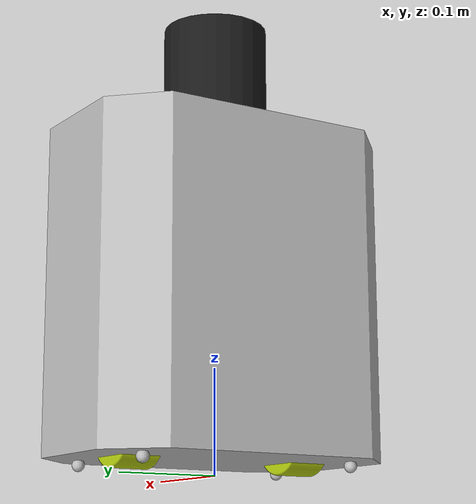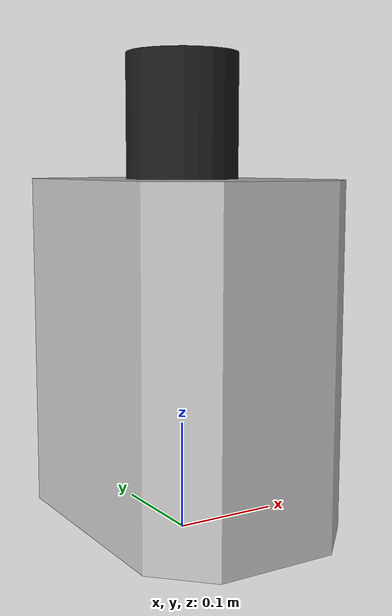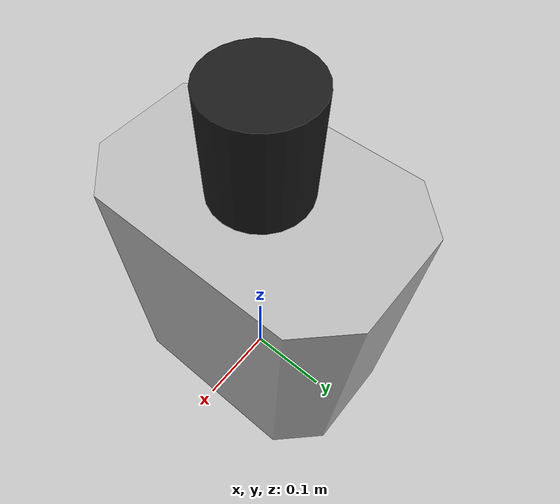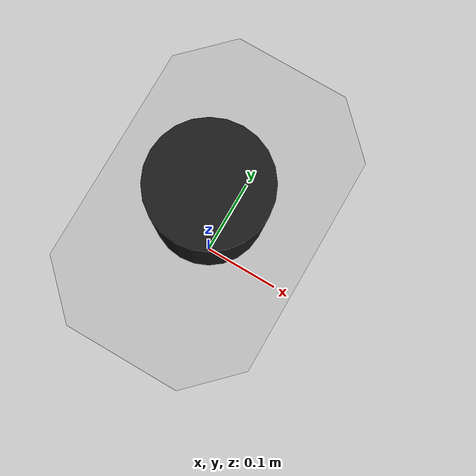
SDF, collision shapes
<?xml version='1.0'?>
<sdf version='1.7'>
    <!-- Some values are totally unrealistic. This allows to have a stable robot -->
    <model name='herminebot'>
        <static>false</static>

        <!-- ****************** ROBOT BASE FOOTPRINT ***************************  -->
        <pose>0.0 0.0 0.0 0.0 0.0 0.0</pose>
        <link name="base_footprint"/>

        <!-- ********************** ROBOT BASE *********************************  -->
        <link name="base_link">
            <inertial>
                <pose>0 0 0 0 0 0</pose>
                <mass>5.0</mass>
            </inertial>

            <visual name="base_visual">
                <pose>0 0 0 0 0 0</pose>
                <geometry>
                    <mesh>
                        <uri>model://herminebot/meshes/base_visual.dae</uri>
                        <scale>1.0 1.0 1.0</scale>
                    </mesh>
                </geometry>
            </visual>

            <collision name="base_collision">
                <pose>0 0 0.014 0 0 0</pose>
                <geometry>
                    <mesh>
                        <uri>model://herminebot/meshes/base_collision.stl</uri>
                        <scale>1.0 1.0 1.0</scale>
                    </mesh>
                </geometry>
            </collision>
        </link>

        <!-- ********************** IMU *********************************  -->
        <link name="imu_link">
            <pose>0 0 0.02 0 0 0</pose>
            <gravity>true</gravity>
            <visual name="imu_visual">
                <geometry>
                    <box>
                        <size>0.019 0.027 0.003</size>
                    </box>
                </geometry>
                <material>
                    <ambient>0.0 0.0 1.0 1.0</ambient>
                    <diffuse>0.3 0.3 0.3 1.0</diffuse>
                    <specular>0.0 0.0 0.0 1.0</specular>
                    <emissive>0.0 0.0 0.0 1.0</emissive>
                </material>
            </visual>

            <collision name="imu_collision">
                <geometry>
                    <box>
                        <size>0.019 0.027 0.003</size>
                    </box>
                </geometry>
            </collision>

            <sensor name="hrc_imu" type="imu">
                <always_on>true</always_on>
                <update_rate>100</update_rate>
                <visualize>true</visualize>
                <imu>
                    <orientation>
                        <x>
                            <noise type="gaussian">
                                <mean>0.0</mean>
                                <stddev>2e-3</stddev>
                            </noise>
                        </x>
                        <y>
                            <noise type="gaussian">
                                <mean>0.0</mean>
                                <stddev>2e-3</stddev>
                            </noise>
                        </y>
                        <z>
                            <noise type="gaussian">
                                <mean>0.0</mean>
                                <stddev>2e-3</stddev>
                            </noise>
                        </z>
                    </orientation>
                    <angular_velocity>
                        <x>
                            <noise type="gaussian">
                                <mean>0.0</mean>
                                <stddev>2e-4</stddev>
                            </noise>
                        </x>
                        <y>
                            <noise type="gaussian">
                                <mean>0.0</mean>
                                <stddev>2e-4</stddev>
                            </noise>
                        </y>
                        <z>
                            <noise type="gaussian">
                                <mean>0.0</mean>
                                <stddev>2e-4</stddev>
                            </noise>
                        </z>
                    </angular_velocity>
                    <linear_acceleration>
                        <x>
                            <noise type="gaussian">
                                <mean>0.0</mean>
                                <stddev>1.7e-2</stddev>
                            </noise>
                        </x>
                        <y>
                            <noise type="gaussian">
                                <mean>0.0</mean>
                                <stddev>1.7e-2</stddev>
                            </noise>
                        </y>
                        <z>
                            <noise type="gaussian">
                                <mean>0.0</mean>
                                <stddev>1.7e-2</stddev>
                            </noise>
                        </z>
                    </linear_acceleration>
                </imu>
                <plugin name="herminebot_imu" filename="libgazebo_ros_imu_sensor.so">
                    <initial_orientation_as_reference>false</initial_orientation_as_reference>
                    <frame_name>imu_link</frame_name>
                    <ros>
                        <namespace>/imu</namespace>
                        <remapping>~/out:=data</remapping>
                    </ros>
                </plugin>
            </sensor>
        </link>

        <!-- ****************************** LIDAR *****************************    -->
        <link name="lidar_link">

            <collision name="lidar_collision">
                <pose>0 0 0.375 0 0 0</pose>
                <geometry>
                    <cylinder>
                        <radius>0.05</radius>
                        <length>0.118</length>
                    </cylinder>
                </geometry>
            </collision>

            <visual name="lidar_visual">
                <pose>0 0 0.39 0 0 0</pose>
                <geometry>
                    <mesh>
                        <uri>model://herminebot/meshes/lidar.stl</uri>
                        <scale>1.0 1.0 1.0</scale>
                    </mesh>
                </geometry>
                <material>
                    <ambient>0.0 0.0 0.0 1.0</ambient>
                    <diffuse>0.1 0.1 0.1 1.0</diffuse>
                    <specular>0.0 0.0 0.0 1.0</specular>
                    <emissive>0.0 0.0 0.0 1.0</emissive>
                </material>
            </visual>

            <sensor name="lidar" type="ray">
                <pose>0 0 0.42 0 0 0</pose>
                <always_on>true</always_on>
                <visualize>false</visualize>
                <update_rate>5</update_rate>
                <ray>
                    <scan>
                        <horizontal>
                            <samples>360</samples>
                            <resolution>1.00000</resolution>
                            <min_angle>-3.14159265</min_angle>
                            <max_angle>3.14159265</max_angle>
                        </horizontal>
                    </scan>
                    <range>
                        <min>0.120000</min>
                        <max>4.0</max>
                        <resolution>0.015000</resolution>
                    </range>
                    <noise>
                        <type>gaussian</type>
                        <mean>0.0</mean>
                        <stddev>0.01</stddev>
                    </noise>
                </ray>
                <plugin name="scan" filename="libgazebo_ros_ray_sensor.so">
                    <ros>
                        <remapping>~/out:=scan</remapping>
                    </ros>
                    <output_type>sensor_msgs/LaserScan</output_type>
                    <frame_name>lidar_link</frame_name>
                </plugin>
            </sensor>
        </link>

        <!-- *********************** DRIVE WHEELS ******************************  -->
        <link name="left_wheel_link">
            <pose>-0.0007 0.0893 0.0345 0 0 0</pose>
            <inertial>
                <mass>50</mass>
            </inertial>
            <collision name="left_wheel_collision">
                <geometry>
                    <mesh>
                        <uri>model://herminebot/meshes/wheel.stl</uri>
                        <scale>1.0 1.0 1.0</scale>
                    </mesh>
                </geometry>
                <surface>
                    <friction>
                        <ode>
                            <mu>0.9</mu>
                            <mu2>0.9</mu2>
                        </ode>
                    </friction>
                </surface>
            </collision>
            <visual name="left_wheel_visual">
                <geometry>
                    <mesh>
                        <uri>model://herminebot/meshes/wheel.stl</uri>
                        <scale>1.0 1.0 1.0</scale>
                    </mesh>
                </geometry>
                <material>
                    <ambient>0.7 0.8 0.05 1.0</ambient>
                    <diffuse>0.7 0.8 0.05 1.0</diffuse>
                    <specular>0.0 0.0 0.0 1.0</specular>
                    <emissive>0.0 0.0 0.0 1.0</emissive>
                </material>
            </visual>
        </link>

        <link name="right_wheel_link">
            <pose>-0.0007 -0.0892 0.0345 0 0 0</pose>
            <inertial>
                <mass>50</mass>
            </inertial>
            <collision name="right_wheel_collision">
                <geometry>
                    <mesh>
                        <uri>model://herminebot/meshes/wheel.stl</uri>
                        <scale>1.0 1.0 1.0</scale>
                    </mesh>
                </geometry>
                <surface>
                    <friction>
                        <ode>
                            <mu>0.9</mu>
                            <mu2>0.9</mu2>
                        </ode>
                    </friction>
                </surface>
            </collision>
            <visual name="right_wheel_visual">
                <geometry>
                    <mesh>
                        <uri>model://herminebot/meshes/wheel.stl</uri>
                        <scale>1.0 1.0 1.0</scale>
                    </mesh>
                </geometry>
                <material>
                    <ambient>0.7 0.8 0.05 1.0</ambient>
                    <diffuse>0.7 0.8 0.05 1.0</diffuse>
                    <specular>0.0 0.0 0.0 1.0</specular>
                    <emissive>0.0 0.0 0.0 1.0</emissive>
                </material>
            </visual>
        </link>

        <!-- *********************** CASTER WHEELS ***************************** -->
        <link name="caster_wheel_link_1">
            <pose>-0.061 -0.1097 0.0097 0 0 0</pose>
            <inertial>
                <mass>49</mass>
            </inertial>
            <collision name="caster_wheel_collision_1">
                <geometry>
                    <sphere>
                        <radius>0.006</radius>
                    </sphere>
                </geometry>
                <surface>
                    <friction>
                        <ode>
                            <mu>0.01</mu>
                            <mu2>0.01</mu2>
                        </ode>
                    </friction>
                </surface>
            </collision>
        </link>

        <link name="caster_wheel_link_2">
            <pose>-0.061 0.1097 0.0097 0 0 0</pose>
            <inertial>
                <mass>49</mass>
            </inertial>
            <collision name="caster_wheel_collision_2">
                <geometry>
                    <sphere>
                        <radius>0.006</radius>
                    </sphere>
                </geometry>
                <surface>
                    <friction>
                        <ode>
                            <mu>0.01</mu>
                            <mu2>0.01</mu2>
                        </ode>
                    </friction>
                </surface>
            </collision>
        </link>

        <link name="caster_wheel_link_3">
            <pose>0.061 -0.1097 0.0097 0 0 0</pose>
            <inertial>
                <mass>50</mass>
            </inertial>
            <collision name="caster_wheel_collision_3">
                <geometry>
                    <sphere>
                        <radius>0.006</radius>
                    </sphere>
                </geometry>
                <surface>
                    <friction>
                        <ode>
                            <mu>0.01</mu>
                            <mu2>0.01</mu2>
                        </ode>
                    </friction>
                </surface>
            </collision>
        </link>

        <link name="caster_wheel_link_4">
            <pose>0.061 0.1097 0.0097 0 0 0</pose>
            <inertial>
                <mass>50</mass>
            </inertial>
            <collision name="caster_wheel_collision_4">
                <geometry>
                    <sphere>
                        <radius>0.006</radius>
                    </sphere>
                </geometry>
                <surface>
                    <friction>
                        <ode>
                            <mu>0.01</mu>
                            <mu2>0.01</mu2>
                        </ode>
                    </friction>
                </surface>
            </collision>
        </link>

        <!-- ********************** LASER SENSORS ******************************  -->

        <link name="laser_sensor_1_link">
            <pose>0.085 0.05 0.025 0 -0.21817 0</pose>
            <visual name="laser_sensor_1_visual">
                <geometry>
                    <box>
                        <size>0.003 0.025 0.0107</size>
                    </box>
                </geometry>
                <material>
                    <ambient>0.6 0.0 0.6 1.0</ambient>
                    <diffuse>0.3 0.0 0.3 1.0</diffuse>
                    <specular>0.0 0.0 0.0 1.0</specular>
                    <emissive>0.0 0.0 0.0 1.0</emissive>
                </material>
            </visual>
            <collision name="laser_sensor_1_collision">
                <geometry>
                    <box>
                        <size>0.003 0.025 0.0107</size>
                    </box>
                </geometry>
            </collision>
            <sensor name="laser_sensor_1" type="ray">
                <pose>0 0 0 0 0 0</pose>
                <always_on>true</always_on>
                <visualize>false</visualize>
                <update_rate>10</update_rate>
                <ray>
                    <scan>
                        <horizontal>
                            <samples>15</samples>
                            <resolution>1.00000</resolution>
                            <min_angle>-0.21817</min_angle>
                            <max_angle>0.21817</max_angle>
                        </horizontal>
                        <vertical>
                            <samples>15</samples>
                            <resolution>1.00000</resolution>
                            <min_angle>-0.21817</min_angle>
                            <max_angle>0.21817</max_angle>
                        </vertical>
                    </scan>
                    <range>
                        <min>0.05</min>
                        <max>2.0</max>
                        <resolution>0.01</resolution>
                    </range>
                    <noise>
                        <type>gaussian</type>
                        <mean>0.0</mean>
                        <stddev>0.005</stddev>
                    </noise>
                </ray>
                <plugin name="laser_sensor_1_scan" filename="libgazebo_ros_ray_sensor.so">
                    <ros>
                        <remapping>~/out:=laser_sensor_scan/id_1</remapping>
                    </ros>
                    <output_type>sensor_msgs/LaserScan</output_type>
                    <frame_name>laser_sensor_1_link</frame_name>
                </plugin>
            </sensor>
        </link>

        <link name="laser_sensor_2_link">
            <pose>0.085 -0.05 0.025 0 -0.21817 0</pose>
            <visual name="laser_sensor_2_visual">
                <geometry>
                    <box>
                        <size>0.003 0.025 0.0107</size>
                    </box>
                </geometry>
                <material>
                    <ambient>0.6 0.0 0.6 1.0</ambient>
                    <diffuse>0.3 0.0 0.3 1.0</diffuse>
                    <specular>0.0 0.0 0.0 1.0</specular>
                    <emissive>0.0 0.0 0.0 1.0</emissive>
                </material>
            </visual>
            <collision name="laser_sensor_2_collision">
                <geometry>
                    <box>
                        <size>0.003 0.025 0.0107</size>
                    </box>
                </geometry>
            </collision>
            <sensor name="laser_sensor_2" type="ray">
                <pose>0 0 0 0 0 0</pose>
                <always_on>true</always_on>
                <visualize>false</visualize>
                <update_rate>10</update_rate>
                <ray>
                    <scan>
                        <horizontal>
                            <samples>15</samples>
                            <resolution>1.00000</resolution>
                            <min_angle>-0.21817</min_angle>
                            <max_angle>0.21817</max_angle>
                        </horizontal>
                        <vertical>
                            <samples>15</samples>
                            <resolution>1.00000</resolution>
                            <min_angle>-0.21817</min_angle>
                            <max_angle>0.21817</max_angle>
                        </vertical>
                    </scan>
                    <range>
                        <min>0.05</min>
                        <max>2.0</max>
                        <resolution>0.01</resolution>
                    </range>
                    <noise>
                        <type>gaussian</type>
                        <mean>0.0</mean>
                        <stddev>0.005</stddev>
                    </noise>
                </ray>
                <plugin name="laser_sensor_2_scan" filename="libgazebo_ros_ray_sensor.so">
                    <ros>
                        <remapping>~/out:=laser_sensor_scan/id_2</remapping>
                    </ros>
                    <output_type>sensor_msgs/LaserScan</output_type>
                    <frame_name>laser_sensor_2_link</frame_name>
                </plugin>
            </sensor>
        </link>

        <link name="laser_sensor_3_link">
            <pose>-0.057 0.05 0.025 0 -0.21817 3.141593</pose>
            <visual name="laser_sensor_3_visual">
                <geometry>
                    <box>
                        <size>0.003 0.025 0.0107</size>
                    </box>
                </geometry>
                <material>
                    <ambient>0.6 0.0 0.6 1.0</ambient>
                    <diffuse>0.3 0.0 0.3 1.0</diffuse>
                    <specular>0.0 0.0 0.0 1.0</specular>
                    <emissive>0.0 0.0 0.0 1.0</emissive>
                </material>
            </visual>
            <collision name="laser_sensor_3_collision">
                <geometry>
                    <box>
                        <size>0.003 0.025 0.0107</size>
                    </box>
                </geometry>
            </collision>
            <sensor name="laser_sensor_3" type="ray">
                <pose>0 0 0 0 0 0</pose>
                <always_on>true</always_on>
                <visualize>false</visualize>
                <update_rate>10</update_rate>
                <ray>
                    <scan>
                        <horizontal>
                            <samples>15</samples>
                            <resolution>1.00000</resolution>
                            <min_angle>-0.21817</min_angle>
                            <max_angle>0.21817</max_angle>
                        </horizontal>
                        <vertical>
                            <samples>15</samples>
                            <resolution>1.00000</resolution>
                            <min_angle>-0.21817</min_angle>
                            <max_angle>0.21817</max_angle>
                        </vertical>
                    </scan>
                    <range>
                        <min>0.05</min>
                        <max>2.0</max>
                        <resolution>0.01</resolution>
                    </range>
                    <noise>
                        <type>gaussian</type>
                        <mean>0.0</mean>
                        <stddev>0.005</stddev>
                    </noise>
                </ray>
                <plugin name="laser_sensor_3_scan" filename="libgazebo_ros_ray_sensor.so">
                    <ros>
                        <remapping>~/out:=laser_sensor_scan/id_3</remapping>
                    </ros>
                    <output_type>sensor_msgs/LaserScan</output_type>
                    <frame_name>laser_sensor_3_link</frame_name>
                </plugin>
            </sensor>
        </link>

        <link name="laser_sensor_4_link">
            <pose>-0.057 -0.05 0.025 0 -0.21817 3.14159265</pose>
            <visual name="laser_sensor_4_visual">
                <geometry>
                    <box>
                        <size>0.003 0.025 0.0107</size>
                    </box>
                </geometry>
                <material>
                    <ambient>0.6 0.0 0.6 1.0</ambient>
                    <diffuse>0.3 0.0 0.3 1.0</diffuse>
                    <specular>0.0 0.0 0.0 1.0</specular>
                    <emissive>0.0 0.0 0.0 1.0</emissive>
                </material>
            </visual>
            <collision name="laser_sensor_4_collision">
                <geometry>
                    <box>
                        <size>0.003 0.025 0.0107</size>
                    </box>
                </geometry>
            </collision>
            <sensor name="laser_sensor_4" type="ray">
                <pose>0 0 0 0 0 0</pose>
                <always_on>true</always_on>
                <visualize>false</visualize>
                <update_rate>10</update_rate>
                <ray>
                    <scan>
                        <horizontal>
                            <samples>15</samples>
                            <resolution>1.00000</resolution>
                            <min_angle>-0.21817</min_angle>
                            <max_angle>0.21817</max_angle>
                        </horizontal>
                        <vertical>
                            <samples>15</samples>
                            <resolution>1.00000</resolution>
                            <min_angle>-0.21817</min_angle>
                            <max_angle>0.21817</max_angle>
                        </vertical>
                    </scan>
                    <range>
                        <min>0.05</min>
                        <max>2.0</max>
                        <resolution>0.01</resolution>
                    </range>
                    <noise>
                        <type>gaussian</type>
                        <mean>0.0</mean>
                        <stddev>0.005</stddev>
                    </noise>
                </ray>
                <plugin name="laser_sensor_4_scan" filename="libgazebo_ros_ray_sensor.so">
                    <ros>
                        <remapping>~/out:=laser_sensor_scan/id_4</remapping>
                    </ros>
                    <output_type>sensor_msgs/LaserScan</output_type>
                    <frame_name>laser_sensor_4_link</frame_name>
                </plugin>
            </sensor>
        </link>

        <!-- ************************ JOINTS ***********************************  -->
        <!-- Pose of the joint is the same as the child link frame -->
        <!-- Axis is the axis of rotation relative to the child link frame -->

        <joint name="base_joint" type="fixed">
            <parent>base_footprint</parent>
            <child>base_link</child>
            <pose>0 0 0.2 0 0 0</pose>
        </joint>

        <joint name='caster_joint_1' type='fixed'>
            <parent>base_link</parent>
            <child>caster_wheel_link_1</child>
            <pose>0 0 0 0 0 0</pose>
        </joint>

        <joint name='caster_joint_2' type='fixed'>
            <parent>base_link</parent>
            <child>caster_wheel_link_2</child>
            <pose>0 0 0 0 0 0</pose>
        </joint>

        <joint name='caster_joint_3' type='fixed'>
            <parent>base_link</parent>
            <child>caster_wheel_link_3</child>
            <pose>0 0 0 0 0 0</pose>
        </joint>

        <joint name='caster_joint_4' type='fixed'>
            <parent>base_link</parent>
            <child>caster_wheel_link_4</child>
            <pose>0 0 0 0 0 0</pose>
        </joint>

        <joint name="left_wheel_joint" type="revolute">
            <parent>base_link</parent>
            <child>left_wheel_link</child>
            <pose>0 0 0 1.570796 0 0</pose>
            <axis>
                <xyz>0 0 -1</xyz>
            </axis>
        </joint>

        <joint name="right_wheel_joint" type="revolute">
            <parent>base_link</parent>
            <child>right_wheel_link</child>
            <pose>0 0 0 1.570796 0 0</pose>
            <axis>
                <xyz>0 0 -1</xyz>
            </axis>
        </joint>

        <joint name="imu_joint" type="fixed">
            <parent>base_link</parent>
            <child>imu_link</child>
            <pose>0 0 0 0 0 0</pose>
        </joint>

        <joint name="lidar_joint" type="fixed">
            <parent>base_link</parent>
            <child>lidar_link</child>
            <pose>0 0 0 0 0 0</pose>
        </joint>

        <joint name="laser_sensor_1_joint" type="fixed">
            <parent>base_link</parent>
            <child>laser_sensor_1_link</child>
            <pose>0 0 0 0 0 0</pose>
        </joint>

        <joint name="laser_sensor_2_joint" type="fixed">
            <parent>base_link</parent>
            <child>laser_sensor_2_link</child>
            <pose>0 0 0 0 0 0</pose>
        </joint>

        <joint name="laser_sensor_3_joint" type="fixed">
            <parent>base_link</parent>
            <child>laser_sensor_3_link</child>
            <pose>0 0 0 0 0 0</pose>
        </joint>

        <joint name="laser_sensor_4_joint" type="fixed">
            <parent>base_link</parent>
            <child>laser_sensor_4_link</child>
            <pose>0 0 0 0 0 0</pose>
        </joint>

        <!-- PLUGINS -->

        <plugin name="diff_drive" filename="libgazebo_ros_diff_drive.so">

            <!-- Wheel Information -->
            <left_joint>left_wheel_joint</left_joint>
            <right_joint>right_wheel_joint</right_joint>
            <wheel_separation>0.14</wheel_separation>
            <wheel_diameter>0.062</wheel_diameter>

            <command_topic>cmd_vel</command_topic>

            <!-- Limits -->
            <max_wheel_torque>200</max_wheel_torque>
            <max_wheel_acceleration>0.5</max_wheel_acceleration>

            <!-- Output -->
            <publish_odom>true</publish_odom>
            <publish_odom_tf>true</publish_odom_tf>
            <publish_wheel_tf>false</publish_wheel_tf>

            <odometry_topic>odom</odometry_topic>
            <odometry_frame>odom</odometry_frame>
            <robot_base_frame>base_footprint</robot_base_frame>

            <!-- Odometry source, 0 for ENCODER, 1 for WORLD, defaults to WORLD -->
            <odometry_source>1</odometry_source>

            <ros>
                <remapping>odom:=wheel/odometry</remapping>
            </ros>

        </plugin>

        <plugin name="herminebot_joint_state" filename="libgazebo_ros_joint_state_publisher.so">
            <ros>
                <remapping>~/out:=joint_states</remapping>
            </ros>
            <update_rate>30</update_rate>
            <joint_name>left_wheel_joint</joint_name>
            <joint_name>right_wheel_joint</joint_name>
        </plugin>
    </model>
</sdf>
